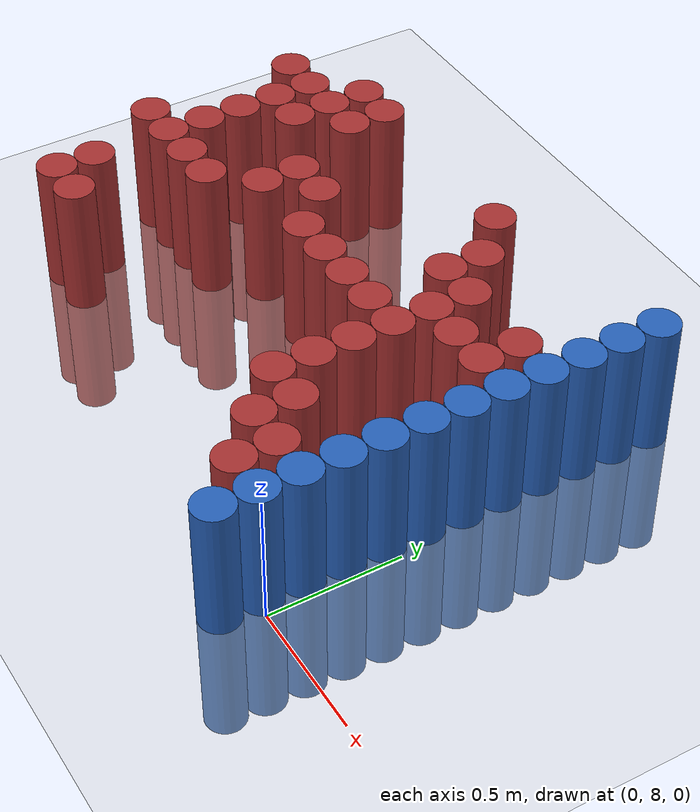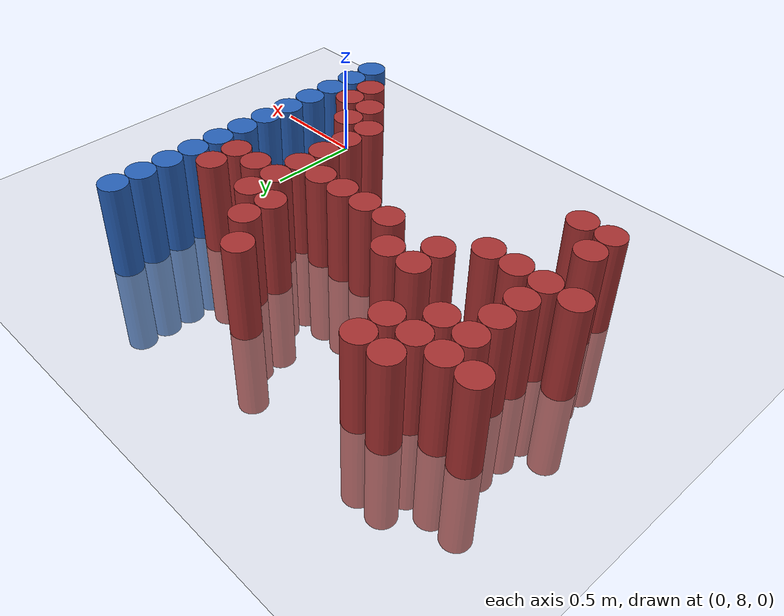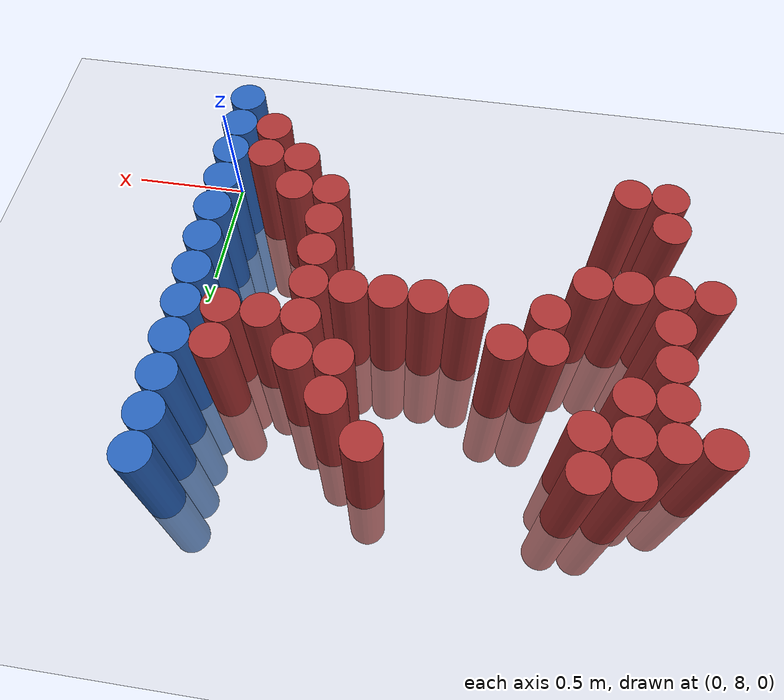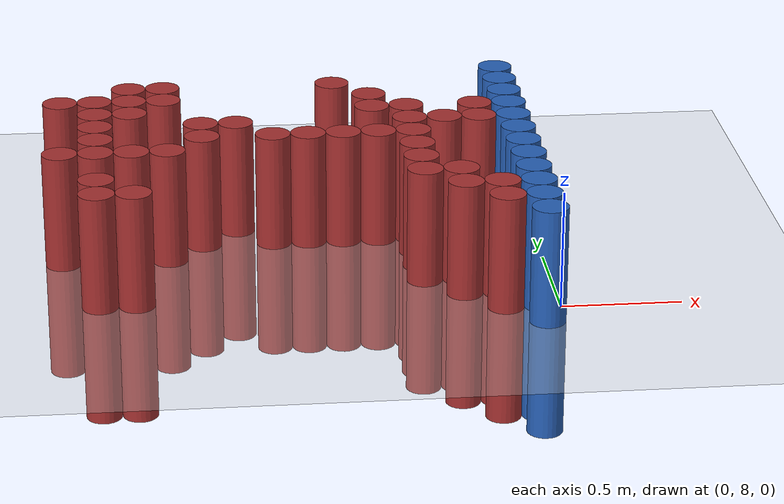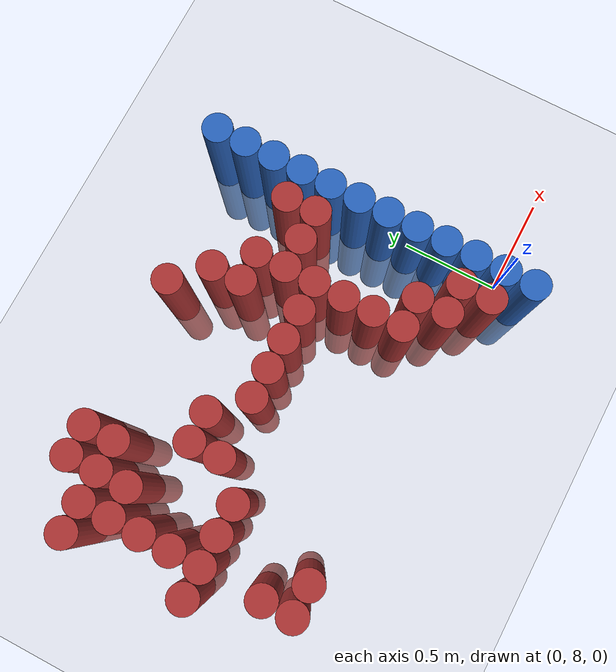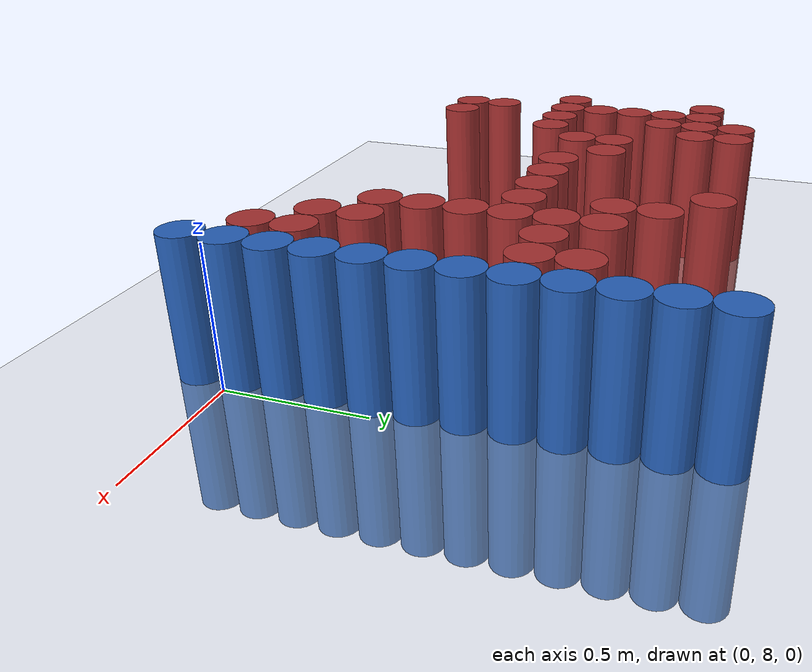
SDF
<sdf version="1.6">
 <world name="default">
  <model name="ground_plane">
   <static>1</static>
   <link name="link">
    <collision name="collision">
     <geometry><plane><normal>0 0 1</normal><size>100 100</size></plane></geometry>
     <surface><friction><ode><mu>100</mu><mu2>50</mu2></ode></friction></surface>
    </collision>
    <visual name="visual">
     <cast_shadows>0</cast_shadows>
     <geometry><plane><normal>0 0 1</normal><size>100 100</size></plane></geometry>
     <material>
      <script><uri>file://media/materials/scripts/gazebo.material</uri><name>Gazebo/Grey</name></script>
     </material>
    </visual>
   </link>
  </model>
  <model name="unit_cylinder_226">
   <static>1</static>
   <pose>-2.025000 8.625000 0.000000 0.000000 0.000000 0.000000</pose>
   <link name="link">
    <inertial>
     <mass>1</mass>
     <inertia><ixx>0.145833</ixx><ixy>0</ixy><ixz>0</ixz><iyy>0.145833</iyy><iyz>0</iyz><izz>0.125</izz></inertia>
    </inertial>
    <collision name="collision">
     <geometry><cylinder><radius>0.075000</radius><length>1</length></cylinder></geometry>
    </collision>
    <visual name="visual">
     <geometry><cylinder><radius>0.075000</radius><length>1</length></cylinder></geometry>
     <material>
      <ambient>0.648000 0.192000 0.192000 1</ambient>
      <diffuse>0.648000 0.192000 0.192000 1</diffuse>
     </material>
     <material>
      <script><name>Gazebo/Grey</name><uri>file://media/materials/scripts/gazebo.material</uri></script>
     </material>
    </visual>
   </link>
  </model>
  <model name="unit_cylinder_227">
   <static>1</static>
   <pose>-2.025000 9.225000 0.000000 0.000000 0.000000 0.000000</pose>
   <link name="link">
    <inertial>
     <mass>1</mass>
     <inertia><ixx>0.145833</ixx><ixy>0</ixy><ixz>0</ixz><iyy>0.145833</iyy><iyz>0</iyz><izz>0.125</izz></inertia>
    </inertial>
    <collision name="collision">
     <geometry><cylinder><radius>0.075000</radius><length>1</length></cylinder></geometry>
    </collision>
    <visual name="visual">
     <geometry><cylinder><radius>0.075000</radius><length>1</length></cylinder></geometry>
     <material>
      <ambient>0.648000 0.192000 0.192000 1</ambient>
      <diffuse>0.648000 0.192000 0.192000 1</diffuse>
     </material>
     <material>
      <script><name>Gazebo/Grey</name><uri>file://media/materials/scripts/gazebo.material</uri></script>
     </material>
    </visual>
   </link>
  </model>
  <model name="unit_cylinder_234">
   <static>1</static>
   <pose>-1.875000 8.175000 0.000000 0.000000 0.000000 0.000000</pose>
   <link name="link">
    <inertial>
     <mass>1</mass>
     <inertia><ixx>0.145833</ixx><ixy>0</ixy><ixz>0</ixz><iyy>0.145833</iyy><iyz>0</iyz><izz>0.125</izz></inertia>
    </inertial>
    <collision name="collision">
     <geometry><cylinder><radius>0.075000</radius><length>1</length></cylinder></geometry>
    </collision>
    <visual name="visual">
     <geometry><cylinder><radius>0.075000</radius><length>1</length></cylinder></geometry>
     <material>
      <ambient>0.648000 0.192000 0.192000 1</ambient>
      <diffuse>0.648000 0.192000 0.192000 1</diffuse>
     </material>
     <material>
      <script><name>Gazebo/Grey</name><uri>file://media/materials/scripts/gazebo.material</uri></script>
     </material>
    </visual>
   </link>
  </model>
  <model name="unit_cylinder_235">
   <static>1</static>
   <pose>-1.875000 8.325000 0.000000 0.000000 0.000000 0.000000</pose>
   <link name="link">
    <inertial>
     <mass>1</mass>
     <inertia><ixx>0.145833</ixx><ixy>0</ixy><ixz>0</ixz><iyy>0.145833</iyy><iyz>0</iyz><izz>0.125</izz></inertia>
    </inertial>
    <collision name="collision">
     <geometry><cylinder><radius>0.075000</radius><length>1</length></cylinder></geometry>
    </collision>
    <visual name="visual">
     <geometry><cylinder><radius>0.075000</radius><length>1</length></cylinder></geometry>
     <material>
      <ambient>0.648000 0.192000 0.192000 1</ambient>
      <diffuse>0.648000 0.192000 0.192000 1</diffuse>
     </material>
     <material>
      <script><name>Gazebo/Grey</name><uri>file://media/materials/scripts/gazebo.material</uri></script>
     </material>
    </visual>
   </link>
  </model>
  <model name="unit_cylinder_236">
   <static>1</static>
   <pose>-1.875000 8.625000 0.000000 0.000000 0.000000 0.000000</pose>
   <link name="link">
    <inertial>
     <mass>1</mass>
     <inertia><ixx>0.145833</ixx><ixy>0</ixy><ixz>0</ixz><iyy>0.145833</iyy><iyz>0</iyz><izz>0.125</izz></inertia>
    </inertial>
    <collision name="collision">
     <geometry><cylinder><radius>0.075000</radius><length>1</length></cylinder></geometry>
    </collision>
    <visual name="visual">
     <geometry><cylinder><radius>0.075000</radius><length>1</length></cylinder></geometry>
     <material>
      <ambient>0.648000 0.192000 0.192000 1</ambient>
      <diffuse>0.648000 0.192000 0.192000 1</diffuse>
     </material>
     <material>
      <script><name>Gazebo/Grey</name><uri>file://media/materials/scripts/gazebo.material</uri></script>
     </material>
    </visual>
   </link>
  </model>
  <model name="unit_cylinder_237">
   <static>1</static>
   <pose>-1.875000 8.775000 0.000000 0.000000 0.000000 0.000000</pose>
   <link name="link">
    <inertial>
     <mass>1</mass>
     <inertia><ixx>0.145833</ixx><ixy>0</ixy><ixz>0</ixz><iyy>0.145833</iyy><iyz>0</iyz><izz>0.125</izz></inertia>
    </inertial>
    <collision name="collision">
     <geometry><cylinder><radius>0.075000</radius><length>1</length></cylinder></geometry>
    </collision>
    <visual name="visual">
     <geometry><cylinder><radius>0.075000</radius><length>1</length></cylinder></geometry>
     <material>
      <ambient>0.648000 0.192000 0.192000 1</ambient>
      <diffuse>0.648000 0.192000 0.192000 1</diffuse>
     </material>
     <material>
      <script><name>Gazebo/Grey</name><uri>file://media/materials/scripts/gazebo.material</uri></script>
     </material>
    </visual>
   </link>
  </model>
  <model name="unit_cylinder_238">
   <static>1</static>
   <pose>-1.875000 8.925000 0.000000 0.000000 0.000000 0.000000</pose>
   <link name="link">
    <inertial>
     <mass>1</mass>
     <inertia><ixx>0.145833</ixx><ixy>0</ixy><ixz>0</ixz><iyy>0.145833</iyy><iyz>0</iyz><izz>0.125</izz></inertia>
    </inertial>
    <collision name="collision">
     <geometry><cylinder><radius>0.075000</radius><length>1</length></cylinder></geometry>
    </collision>
    <visual name="visual">
     <geometry><cylinder><radius>0.075000</radius><length>1</length></cylinder></geometry>
     <material>
      <ambient>0.648000 0.192000 0.192000 1</ambient>
      <diffuse>0.648000 0.192000 0.192000 1</diffuse>
     </material>
     <material>
      <script><name>Gazebo/Grey</name><uri>file://media/materials/scripts/gazebo.material</uri></script>
     </material>
    </visual>
   </link>
  </model>
  <model name="unit_cylinder_239">
   <static>1</static>
   <pose>-1.875000 9.075000 0.000000 0.000000 0.000000 0.000000</pose>
   <link name="link">
    <inertial>
     <mass>1</mass>
     <inertia><ixx>0.145833</ixx><ixy>0</ixy><ixz>0</ixz><iyy>0.145833</iyy><iyz>0</iyz><izz>0.125</izz></inertia>
    </inertial>
    <collision name="collision">
     <geometry><cylinder><radius>0.075000</radius><length>1</length></cylinder></geometry>
    </collision>
    <visual name="visual">
     <geometry><cylinder><radius>0.075000</radius><length>1</length></cylinder></geometry>
     <material>
      <ambient>0.648000 0.192000 0.192000 1</ambient>
      <diffuse>0.648000 0.192000 0.192000 1</diffuse>
     </material>
     <material>
      <script><name>Gazebo/Grey</name><uri>file://media/materials/scripts/gazebo.material</uri></script>
     </material>
    </visual>
   </link>
  </model>
  <model name="unit_cylinder_240">
   <static>1</static>
   <pose>-1.875000 9.225000 0.000000 0.000000 0.000000 0.000000</pose>
   <link name="link">
    <inertial>
     <mass>1</mass>
     <inertia><ixx>0.145833</ixx><ixy>0</ixy><ixz>0</ixz><iyy>0.145833</iyy><iyz>0</iyz><izz>0.125</izz></inertia>
    </inertial>
    <collision name="collision">
     <geometry><cylinder><radius>0.075000</radius><length>1</length></cylinder></geometry>
    </collision>
    <visual name="visual">
     <geometry><cylinder><radius>0.075000</radius><length>1</length></cylinder></geometry>
     <material>
      <ambient>0.648000 0.192000 0.192000 1</ambient>
      <diffuse>0.648000 0.192000 0.192000 1</diffuse>
     </material>
     <material>
      <script><name>Gazebo/Grey</name><uri>file://media/materials/scripts/gazebo.material</uri></script>
     </material>
    </visual>
   </link>
  </model>
  <model name="unit_cylinder_251">
   <static>1</static>
   <pose>-1.725000 8.175000 0.000000 0.000000 0.000000 0.000000</pose>
   <link name="link">
    <inertial>
     <mass>1</mass>
     <inertia><ixx>0.145833</ixx><ixy>0</ixy><ixz>0</ixz><iyy>0.145833</iyy><iyz>0</iyz><izz>0.125</izz></inertia>
    </inertial>
    <collision name="collision">
     <geometry><cylinder><radius>0.075000</radius><length>1</length></cylinder></geometry>
    </collision>
    <visual name="visual">
     <geometry><cylinder><radius>0.075000</radius><length>1</length></cylinder></geometry>
     <material>
      <ambient>0.648000 0.192000 0.192000 1</ambient>
      <diffuse>0.648000 0.192000 0.192000 1</diffuse>
     </material>
     <material>
      <script><name>Gazebo/Grey</name><uri>file://media/materials/scripts/gazebo.material</uri></script>
     </material>
    </visual>
   </link>
  </model>
  <model name="unit_cylinder_252">
   <static>1</static>
   <pose>-1.725000 8.625000 0.000000 0.000000 0.000000 0.000000</pose>
   <link name="link">
    <inertial>
     <mass>1</mass>
     <inertia><ixx>0.145833</ixx><ixy>0</ixy><ixz>0</ixz><iyy>0.145833</iyy><iyz>0</iyz><izz>0.125</izz></inertia>
    </inertial>
    <collision name="collision">
     <geometry><cylinder><radius>0.075000</radius><length>1</length></cylinder></geometry>
    </collision>
    <visual name="visual">
     <geometry><cylinder><radius>0.075000</radius><length>1</length></cylinder></geometry>
     <material>
      <ambient>0.648000 0.192000 0.192000 1</ambient>
      <diffuse>0.648000 0.192000 0.192000 1</diffuse>
     </material>
     <material>
      <script><name>Gazebo/Grey</name><uri>file://media/materials/scripts/gazebo.material</uri></script>
     </material>
    </visual>
   </link>
  </model>
  <model name="unit_cylinder_253">
   <static>1</static>
   <pose>-1.725000 9.075000 0.000000 0.000000 0.000000 0.000000</pose>
   <link name="link">
    <inertial>
     <mass>1</mass>
     <inertia><ixx>0.145833</ixx><ixy>0</ixy><ixz>0</ixz><iyy>0.145833</iyy><iyz>0</iyz><izz>0.125</izz></inertia>
    </inertial>
    <collision name="collision">
     <geometry><cylinder><radius>0.075000</radius><length>1</length></cylinder></geometry>
    </collision>
    <visual name="visual">
     <geometry><cylinder><radius>0.075000</radius><length>1</length></cylinder></geometry>
     <material>
      <ambient>0.648000 0.192000 0.192000 1</ambient>
      <diffuse>0.648000 0.192000 0.192000 1</diffuse>
     </material>
     <material>
      <script><name>Gazebo/Grey</name><uri>file://media/materials/scripts/gazebo.material</uri></script>
     </material>
    </visual>
   </link>
  </model>
  <model name="unit_cylinder_254">
   <static>1</static>
   <pose>-1.725000 9.225000 0.000000 0.000000 0.000000 0.000000</pose>
   <link name="link">
    <inertial>
     <mass>1</mass>
     <inertia><ixx>0.145833</ixx><ixy>0</ixy><ixz>0</ixz><iyy>0.145833</iyy><iyz>0</iyz><izz>0.125</izz></inertia>
    </inertial>
    <collision name="collision">
     <geometry><cylinder><radius>0.075000</radius><length>1</length></cylinder></geometry>
    </collision>
    <visual name="visual">
     <geometry><cylinder><radius>0.075000</radius><length>1</length></cylinder></geometry>
     <material>
      <ambient>0.648000 0.192000 0.192000 1</ambient>
      <diffuse>0.648000 0.192000 0.192000 1</diffuse>
     </material>
     <material>
      <script><name>Gazebo/Grey</name><uri>file://media/materials/scripts/gazebo.material</uri></script>
     </material>
    </visual>
   </link>
  </model>
  <model name="unit_cylinder_255">
   <static>1</static>
   <pose>-1.725000 9.375000 0.000000 0.000000 0.000000 0.000000</pose>
   <link name="link">
    <inertial>
     <mass>1</mass>
     <inertia><ixx>0.145833</ixx><ixy>0</ixy><ixz>0</ixz><iyy>0.145833</iyy><iyz>0</iyz><izz>0.125</izz></inertia>
    </inertial>
    <collision name="collision">
     <geometry><cylinder><radius>0.075000</radius><length>1</length></cylinder></geometry>
    </collision>
    <visual name="visual">
     <geometry><cylinder><radius>0.075000</radius><length>1</length></cylinder></geometry>
     <material>
      <ambient>0.648000 0.192000 0.192000 1</ambient>
      <diffuse>0.648000 0.192000 0.192000 1</diffuse>
     </material>
     <material>
      <script><name>Gazebo/Grey</name><uri>file://media/materials/scripts/gazebo.material</uri></script>
     </material>
    </visual>
   </link>
  </model>
  <model name="unit_cylinder_264">
   <static>1</static>
   <pose>-1.575000 8.625000 0.000000 0.000000 0.000000 0.000000</pose>
   <link name="link">
    <inertial>
     <mass>1</mass>
     <inertia><ixx>0.145833</ixx><ixy>0</ixy><ixz>0</ixz><iyy>0.145833</iyy><iyz>0</iyz><izz>0.125</izz></inertia>
    </inertial>
    <collision name="collision">
     <geometry><cylinder><radius>0.075000</radius><length>1</length></cylinder></geometry>
    </collision>
    <visual name="visual">
     <geometry><cylinder><radius>0.075000</radius><length>1</length></cylinder></geometry>
     <material>
      <ambient>0.648000 0.192000 0.192000 1</ambient>
      <diffuse>0.648000 0.192000 0.192000 1</diffuse>
     </material>
     <material>
      <script><name>Gazebo/Grey</name><uri>file://media/materials/scripts/gazebo.material</uri></script>
     </material>
    </visual>
   </link>
  </model>
  <model name="unit_cylinder_265">
   <static>1</static>
   <pose>-1.575000 9.225000 0.000000 0.000000 0.000000 0.000000</pose>
   <link name="link">
    <inertial>
     <mass>1</mass>
     <inertia><ixx>0.145833</ixx><ixy>0</ixy><ixz>0</ixz><iyy>0.145833</iyy><iyz>0</iyz><izz>0.125</izz></inertia>
    </inertial>
    <collision name="collision">
     <geometry><cylinder><radius>0.075000</radius><length>1</length></cylinder></geometry>
    </collision>
    <visual name="visual">
     <geometry><cylinder><radius>0.075000</radius><length>1</length></cylinder></geometry>
     <material>
      <ambient>0.648000 0.192000 0.192000 1</ambient>
      <diffuse>0.648000 0.192000 0.192000 1</diffuse>
     </material>
     <material>
      <script><name>Gazebo/Grey</name><uri>file://media/materials/scripts/gazebo.material</uri></script>
     </material>
    </visual>
   </link>
  </model>
  <model name="unit_cylinder_266">
   <static>1</static>
   <pose>-1.575000 9.375000 0.000000 0.000000 0.000000 0.000000</pose>
   <link name="link">
    <inertial>
     <mass>1</mass>
     <inertia><ixx>0.145833</ixx><ixy>0</ixy><ixz>0</ixz><iyy>0.145833</iyy><iyz>0</iyz><izz>0.125</izz></inertia>
    </inertial>
    <collision name="collision">
     <geometry><cylinder><radius>0.075000</radius><length>1</length></cylinder></geometry>
    </collision>
    <visual name="visual">
     <geometry><cylinder><radius>0.075000</radius><length>1</length></cylinder></geometry>
     <material>
      <ambient>0.648000 0.192000 0.192000 1</ambient>
      <diffuse>0.648000 0.192000 0.192000 1</diffuse>
     </material>
     <material>
      <script><name>Gazebo/Grey</name><uri>file://media/materials/scripts/gazebo.material</uri></script>
     </material>
    </visual>
   </link>
  </model>
  <model name="unit_cylinder_274">
   <static>1</static>
   <pose>-1.425000 8.775000 0.000000 0.000000 0.000000 0.000000</pose>
   <link name="link">
    <inertial>
     <mass>1</mass>
     <inertia><ixx>0.145833</ixx><ixy>0</ixy><ixz>0</ixz><iyy>0.145833</iyy><iyz>0</iyz><izz>0.125</izz></inertia>
    </inertial>
    <collision name="collision">
     <geometry><cylinder><radius>0.075000</radius><length>1</length></cylinder></geometry>
    </collision>
    <visual name="visual">
     <geometry><cylinder><radius>0.075000</radius><length>1</length></cylinder></geometry>
     <material>
      <ambient>0.648000 0.192000 0.192000 1</ambient>
      <diffuse>0.648000 0.192000 0.192000 1</diffuse>
     </material>
     <material>
      <script><name>Gazebo/Grey</name><uri>file://media/materials/scripts/gazebo.material</uri></script>
     </material>
    </visual>
   </link>
  </model>
  <model name="unit_cylinder_275">
   <static>1</static>
   <pose>-1.425000 8.925000 0.000000 0.000000 0.000000 0.000000</pose>
   <link name="link">
    <inertial>
     <mass>1</mass>
     <inertia><ixx>0.145833</ixx><ixy>0</ixy><ixz>0</ixz><iyy>0.145833</iyy><iyz>0</iyz><izz>0.125</izz></inertia>
    </inertial>
    <collision name="collision">
     <geometry><cylinder><radius>0.075000</radius><length>1</length></cylinder></geometry>
    </collision>
    <visual name="visual">
     <geometry><cylinder><radius>0.075000</radius><length>1</length></cylinder></geometry>
     <material>
      <ambient>0.648000 0.192000 0.192000 1</ambient>
      <diffuse>0.648000 0.192000 0.192000 1</diffuse>
     </material>
     <material>
      <script><name>Gazebo/Grey</name><uri>file://media/materials/scripts/gazebo.material</uri></script>
     </material>
    </visual>
   </link>
  </model>
  <model name="unit_cylinder_278">
   <static>1</static>
   <pose>-1.275000 8.925000 0.000000 0.000000 0.000000 0.000000</pose>
   <link name="link">
    <inertial>
     <mass>1</mass>
     <inertia><ixx>0.145833</ixx><ixy>0</ixy><ixz>0</ixz><iyy>0.145833</iyy><iyz>0</iyz><izz>0.125</izz></inertia>
    </inertial>
    <collision name="collision">
     <geometry><cylinder><radius>0.075000</radius><length>1</length></cylinder></geometry>
    </collision>
    <visual name="visual">
     <geometry><cylinder><radius>0.075000</radius><length>1</length></cylinder></geometry>
     <material>
      <ambient>0.648000 0.192000 0.192000 1</ambient>
      <diffuse>0.648000 0.192000 0.192000 1</diffuse>
     </material>
     <material>
      <script><name>Gazebo/Grey</name><uri>file://media/materials/scripts/gazebo.material</uri></script>
     </material>
    </visual>
   </link>
  </model>
  <model name="unit_cylinder_279">
   <static>1</static>
   <pose>-1.125000 8.775000 0.000000 0.000000 0.000000 0.000000</pose>
   <link name="link">
    <inertial>
     <mass>1</mass>
     <inertia><ixx>0.145833</ixx><ixy>0</ixy><ixz>0</ixz><iyy>0.145833</iyy><iyz>0</iyz><izz>0.125</izz></inertia>
    </inertial>
    <collision name="collision">
     <geometry><cylinder><radius>0.075000</radius><length>1</length></cylinder></geometry>
    </collision>
    <visual name="visual">
     <geometry><cylinder><radius>0.075000</radius><length>1</length></cylinder></geometry>
     <material>
      <ambient>0.648000 0.192000 0.192000 1</ambient>
      <diffuse>0.648000 0.192000 0.192000 1</diffuse>
     </material>
     <material>
      <script><name>Gazebo/Grey</name><uri>file://media/materials/scripts/gazebo.material</uri></script>
     </material>
    </visual>
   </link>
  </model>
  <model name="unit_cylinder_280">
   <static>1</static>
   <pose>-0.975000 8.775000 0.000000 0.000000 0.000000 0.000000</pose>
   <link name="link">
    <inertial>
     <mass>1</mass>
     <inertia><ixx>0.145833</ixx><ixy>0</ixy><ixz>0</ixz><iyy>0.145833</iyy><iyz>0</iyz><izz>0.125</izz></inertia>
    </inertial>
    <collision name="collision">
     <geometry><cylinder><radius>0.075000</radius><length>1</length></cylinder></geometry>
    </collision>
    <visual name="visual">
     <geometry><cylinder><radius>0.075000</radius><length>1</length></cylinder></geometry>
     <material>
      <ambient>0.648000 0.192000 0.192000 1</ambient>
      <diffuse>0.648000 0.192000 0.192000 1</diffuse>
     </material>
     <material>
      <script><name>Gazebo/Grey</name><uri>file://media/materials/scripts/gazebo.material</uri></script>
     </material>
    </visual>
   </link>
  </model>
  <model name="unit_cylinder_282">
   <static>1</static>
   <pose>-0.825000 8.775000 0.000000 0.000000 0.000000 0.000000</pose>
   <link name="link">
    <inertial>
     <mass>1</mass>
     <inertia><ixx>0.145833</ixx><ixy>0</ixy><ixz>0</ixz><iyy>0.145833</iyy><iyz>0</iyz><izz>0.125</izz></inertia>
    </inertial>
    <collision name="collision">
     <geometry><cylinder><radius>0.075000</radius><length>1</length></cylinder></geometry>
    </collision>
    <visual name="visual">
     <geometry><cylinder><radius>0.075000</radius><length>1</length></cylinder></geometry>
     <material>
      <ambient>0.648000 0.192000 0.192000 1</ambient>
      <diffuse>0.648000 0.192000 0.192000 1</diffuse>
     </material>
     <material>
      <script><name>Gazebo/Grey</name><uri>file://media/materials/scripts/gazebo.material</uri></script>
     </material>
    </visual>
   </link>
  </model>
  <model name="unit_cylinder_283">
   <static>1</static>
   <pose>-0.825000 9.375000 0.000000 0.000000 0.000000 0.000000</pose>
   <link name="link">
    <inertial>
     <mass>1</mass>
     <inertia><ixx>0.145833</ixx><ixy>0</ixy><ixz>0</ixz><iyy>0.145833</iyy><iyz>0</iyz><izz>0.125</izz></inertia>
    </inertial>
    <collision name="collision">
     <geometry><cylinder><radius>0.075000</radius><length>1</length></cylinder></geometry>
    </collision>
    <visual name="visual">
     <geometry><cylinder><radius>0.075000</radius><length>1</length></cylinder></geometry>
     <material>
      <ambient>0.648000 0.192000 0.192000 1</ambient>
      <diffuse>0.648000 0.192000 0.192000 1</diffuse>
     </material>
     <material>
      <script><name>Gazebo/Grey</name><uri>file://media/materials/scripts/gazebo.material</uri></script>
     </material>
    </visual>
   </link>
  </model>
  <model name="unit_cylinder_290">
   <static>1</static>
   <pose>-0.675000 8.775000 0.000000 0.000000 0.000000 0.000000</pose>
   <link name="link">
    <inertial>
     <mass>1</mass>
     <inertia><ixx>0.145833</ixx><ixy>0</ixy><ixz>0</ixz><iyy>0.145833</iyy><iyz>0</iyz><izz>0.125</izz></inertia>
    </inertial>
    <collision name="collision">
     <geometry><cylinder><radius>0.075000</radius><length>1</length></cylinder></geometry>
    </collision>
    <visual name="visual">
     <geometry><cylinder><radius>0.075000</radius><length>1</length></cylinder></geometry>
     <material>
      <ambient>0.648000 0.192000 0.192000 1</ambient>
      <diffuse>0.648000 0.192000 0.192000 1</diffuse>
     </material>
     <material>
      <script><name>Gazebo/Grey</name><uri>file://media/materials/scripts/gazebo.material</uri></script>
     </material>
    </visual>
   </link>
  </model>
  <model name="unit_cylinder_291">
   <static>1</static>
   <pose>-0.675000 9.075000 0.000000 0.000000 0.000000 0.000000</pose>
   <link name="link">
    <inertial>
     <mass>1</mass>
     <inertia><ixx>0.145833</ixx><ixy>0</ixy><ixz>0</ixz><iyy>0.145833</iyy><iyz>0</iyz><izz>0.125</izz></inertia>
    </inertial>
    <collision name="collision">
     <geometry><cylinder><radius>0.075000</radius><length>1</length></cylinder></geometry>
    </collision>
    <visual name="visual">
     <geometry><cylinder><radius>0.075000</radius><length>1</length></cylinder></geometry>
     <material>
      <ambient>0.648000 0.192000 0.192000 1</ambient>
      <diffuse>0.648000 0.192000 0.192000 1</diffuse>
     </material>
     <material>
      <script><name>Gazebo/Grey</name><uri>file://media/materials/scripts/gazebo.material</uri></script>
     </material>
    </visual>
   </link>
  </model>
  <model name="unit_cylinder_292">
   <static>1</static>
   <pose>-0.675000 9.225000 0.000000 0.000000 0.000000 0.000000</pose>
   <link name="link">
    <inertial>
     <mass>1</mass>
     <inertia><ixx>0.145833</ixx><ixy>0</ixy><ixz>0</ixz><iyy>0.145833</iyy><iyz>0</iyz><izz>0.125</izz></inertia>
    </inertial>
    <collision name="collision">
     <geometry><cylinder><radius>0.075000</radius><length>1</length></cylinder></geometry>
    </collision>
    <visual name="visual">
     <geometry><cylinder><radius>0.075000</radius><length>1</length></cylinder></geometry>
     <material>
      <ambient>0.648000 0.192000 0.192000 1</ambient>
      <diffuse>0.648000 0.192000 0.192000 1</diffuse>
     </material>
     <material>
      <script><name>Gazebo/Grey</name><uri>file://media/materials/scripts/gazebo.material</uri></script>
     </material>
    </visual>
   </link>
  </model>
  <model name="unit_cylinder_300">
   <static>1</static>
   <pose>-0.525000 8.325000 0.000000 0.000000 0.000000 0.000000</pose>
   <link name="link">
    <inertial>
     <mass>1</mass>
     <inertia><ixx>0.145833</ixx><ixy>0</ixy><ixz>0</ixz><iyy>0.145833</iyy><iyz>0</iyz><izz>0.125</izz></inertia>
    </inertial>
    <collision name="collision">
     <geometry><cylinder><radius>0.075000</radius><length>1</length></cylinder></geometry>
    </collision>
    <visual name="visual">
     <geometry><cylinder><radius>0.075000</radius><length>1</length></cylinder></geometry>
     <material>
      <ambient>0.648000 0.192000 0.192000 1</ambient>
      <diffuse>0.648000 0.192000 0.192000 1</diffuse>
     </material>
     <material>
      <script><name>Gazebo/Grey</name><uri>file://media/materials/scripts/gazebo.material</uri></script>
     </material>
    </visual>
   </link>
  </model>
  <model name="unit_cylinder_301">
   <static>1</static>
   <pose>-0.525000 8.475000 0.000000 0.000000 0.000000 0.000000</pose>
   <link name="link">
    <inertial>
     <mass>1</mass>
     <inertia><ixx>0.145833</ixx><ixy>0</ixy><ixz>0</ixz><iyy>0.145833</iyy><iyz>0</iyz><izz>0.125</izz></inertia>
    </inertial>
    <collision name="collision">
     <geometry><cylinder><radius>0.075000</radius><length>1</length></cylinder></geometry>
    </collision>
    <visual name="visual">
     <geometry><cylinder><radius>0.075000</radius><length>1</length></cylinder></geometry>
     <material>
      <ambient>0.648000 0.192000 0.192000 1</ambient>
      <diffuse>0.648000 0.192000 0.192000 1</diffuse>
     </material>
     <material>
      <script><name>Gazebo/Grey</name><uri>file://media/materials/scripts/gazebo.material</uri></script>
     </material>
    </visual>
   </link>
  </model>
  <model name="unit_cylinder_302">
   <static>1</static>
   <pose>-0.525000 8.625000 0.000000 0.000000 0.000000 0.000000</pose>
   <link name="link">
    <inertial>
     <mass>1</mass>
     <inertia><ixx>0.145833</ixx><ixy>0</ixy><ixz>0</ixz><iyy>0.145833</iyy><iyz>0</iyz><izz>0.125</izz></inertia>
    </inertial>
    <collision name="collision">
     <geometry><cylinder><radius>0.075000</radius><length>1</length></cylinder></geometry>
    </collision>
    <visual name="visual">
     <geometry><cylinder><radius>0.075000</radius><length>1</length></cylinder></geometry>
     <material>
      <ambient>0.648000 0.192000 0.192000 1</ambient>
      <diffuse>0.648000 0.192000 0.192000 1</diffuse>
     </material>
     <material>
      <script><name>Gazebo/Grey</name><uri>file://media/materials/scripts/gazebo.material</uri></script>
     </material>
    </visual>
   </link>
  </model>
  <model name="unit_cylinder_303">
   <static>1</static>
   <pose>-0.525000 8.775000 0.000000 0.000000 0.000000 0.000000</pose>
   <link name="link">
    <inertial>
     <mass>1</mass>
     <inertia><ixx>0.145833</ixx><ixy>0</ixy><ixz>0</ixz><iyy>0.145833</iyy><iyz>0</iyz><izz>0.125</izz></inertia>
    </inertial>
    <collision name="collision">
     <geometry><cylinder><radius>0.075000</radius><length>1</length></cylinder></geometry>
    </collision>
    <visual name="visual">
     <geometry><cylinder><radius>0.075000</radius><length>1</length></cylinder></geometry>
     <material>
      <ambient>0.648000 0.192000 0.192000 1</ambient>
      <diffuse>0.648000 0.192000 0.192000 1</diffuse>
     </material>
     <material>
      <script><name>Gazebo/Grey</name><uri>file://media/materials/scripts/gazebo.material</uri></script>
     </material>
    </visual>
   </link>
  </model>
  <model name="unit_cylinder_304">
   <static>1</static>
   <pose>-0.525000 8.925000 0.000000 0.000000 0.000000 0.000000</pose>
   <link name="link">
    <inertial>
     <mass>1</mass>
     <inertia><ixx>0.145833</ixx><ixy>0</ixy><ixz>0</ixz><iyy>0.145833</iyy><iyz>0</iyz><izz>0.125</izz></inertia>
    </inertial>
    <collision name="collision">
     <geometry><cylinder><radius>0.075000</radius><length>1</length></cylinder></geometry>
    </collision>
    <visual name="visual">
     <geometry><cylinder><radius>0.075000</radius><length>1</length></cylinder></geometry>
     <material>
      <ambient>0.648000 0.192000 0.192000 1</ambient>
      <diffuse>0.648000 0.192000 0.192000 1</diffuse>
     </material>
     <material>
      <script><name>Gazebo/Grey</name><uri>file://media/materials/scripts/gazebo.material</uri></script>
     </material>
    </visual>
   </link>
  </model>
  <model name="unit_cylinder_305">
   <static>1</static>
   <pose>-0.525000 9.075000 0.000000 0.000000 0.000000 0.000000</pose>
   <link name="link">
    <inertial>
     <mass>1</mass>
     <inertia><ixx>0.145833</ixx><ixy>0</ixy><ixz>0</ixz><iyy>0.145833</iyy><iyz>0</iyz><izz>0.125</izz></inertia>
    </inertial>
    <collision name="collision">
     <geometry><cylinder><radius>0.075000</radius><length>1</length></cylinder></geometry>
    </collision>
    <visual name="visual">
     <geometry><cylinder><radius>0.075000</radius><length>1</length></cylinder></geometry>
     <material>
      <ambient>0.648000 0.192000 0.192000 1</ambient>
      <diffuse>0.648000 0.192000 0.192000 1</diffuse>
     </material>
     <material>
      <script><name>Gazebo/Grey</name><uri>file://media/materials/scripts/gazebo.material</uri></script>
     </material>
    </visual>
   </link>
  </model>
  <model name="unit_cylinder_312">
   <static>1</static>
   <pose>-0.375000 8.175000 0.000000 0.000000 0.000000 0.000000</pose>
   <link name="link">
    <inertial>
     <mass>1</mass>
     <inertia><ixx>0.145833</ixx><ixy>0</ixy><ixz>0</ixz><iyy>0.145833</iyy><iyz>0</iyz><izz>0.125</izz></inertia>
    </inertial>
    <collision name="collision">
     <geometry><cylinder><radius>0.075000</radius><length>1</length></cylinder></geometry>
    </collision>
    <visual name="visual">
     <geometry><cylinder><radius>0.075000</radius><length>1</length></cylinder></geometry>
     <material>
      <ambient>0.648000 0.192000 0.192000 1</ambient>
      <diffuse>0.648000 0.192000 0.192000 1</diffuse>
     </material>
     <material>
      <script><name>Gazebo/Grey</name><uri>file://media/materials/scripts/gazebo.material</uri></script>
     </material>
    </visual>
   </link>
  </model>
  <model name="unit_cylinder_313">
   <static>1</static>
   <pose>-0.375000 8.325000 0.000000 0.000000 0.000000 0.000000</pose>
   <link name="link">
    <inertial>
     <mass>1</mass>
     <inertia><ixx>0.145833</ixx><ixy>0</ixy><ixz>0</ixz><iyy>0.145833</iyy><iyz>0</iyz><izz>0.125</izz></inertia>
    </inertial>
    <collision name="collision">
     <geometry><cylinder><radius>0.075000</radius><length>1</length></cylinder></geometry>
    </collision>
    <visual name="visual">
     <geometry><cylinder><radius>0.075000</radius><length>1</length></cylinder></geometry>
     <material>
      <ambient>0.648000 0.192000 0.192000 1</ambient>
      <diffuse>0.648000 0.192000 0.192000 1</diffuse>
     </material>
     <material>
      <script><name>Gazebo/Grey</name><uri>file://media/materials/scripts/gazebo.material</uri></script>
     </material>
    </visual>
   </link>
  </model>
  <model name="unit_cylinder_314">
   <static>1</static>
   <pose>-0.375000 8.925000 0.000000 0.000000 0.000000 0.000000</pose>
   <link name="link">
    <inertial>
     <mass>1</mass>
     <inertia><ixx>0.145833</ixx><ixy>0</ixy><ixz>0</ixz><iyy>0.145833</iyy><iyz>0</iyz><izz>0.125</izz></inertia>
    </inertial>
    <collision name="collision">
     <geometry><cylinder><radius>0.075000</radius><length>1</length></cylinder></geometry>
    </collision>
    <visual name="visual">
     <geometry><cylinder><radius>0.075000</radius><length>1</length></cylinder></geometry>
     <material>
      <ambient>0.648000 0.192000 0.192000 1</ambient>
      <diffuse>0.648000 0.192000 0.192000 1</diffuse>
     </material>
     <material>
      <script><name>Gazebo/Grey</name><uri>file://media/materials/scripts/gazebo.material</uri></script>
     </material>
    </visual>
   </link>
  </model>
  <model name="unit_cylinder_325">
   <static>1</static>
   <pose>-0.225000 8.025000 0.000000 0.000000 0.000000 0.000000</pose>
   <link name="link">
    <inertial>
     <mass>1</mass>
     <inertia><ixx>0.145833</ixx><ixy>0</ixy><ixz>0</ixz><iyy>0.145833</iyy><iyz>0</iyz><izz>0.125</izz></inertia>
    </inertial>
    <collision name="collision">
     <geometry><cylinder><radius>0.075000</radius><length>1</length></cylinder></geometry>
    </collision>
    <visual name="visual">
     <geometry><cylinder><radius>0.075000</radius><length>1</length></cylinder></geometry>
     <material>
      <ambient>0.648000 0.192000 0.192000 1</ambient>
      <diffuse>0.648000 0.192000 0.192000 1</diffuse>
     </material>
     <material>
      <script><name>Gazebo/Grey</name><uri>file://media/materials/scripts/gazebo.material</uri></script>
     </material>
    </visual>
   </link>
  </model>
  <model name="unit_cylinder_326">
   <static>1</static>
   <pose>-0.225000 8.175000 0.000000 0.000000 0.000000 0.000000</pose>
   <link name="link">
    <inertial>
     <mass>1</mass>
     <inertia><ixx>0.145833</ixx><ixy>0</ixy><ixz>0</ixz><iyy>0.145833</iyy><iyz>0</iyz><izz>0.125</izz></inertia>
    </inertial>
    <collision name="collision">
     <geometry><cylinder><radius>0.075000</radius><length>1</length></cylinder></geometry>
    </collision>
    <visual name="visual">
     <geometry><cylinder><radius>0.075000</radius><length>1</length></cylinder></geometry>
     <material>
      <ambient>0.648000 0.192000 0.192000 1</ambient>
      <diffuse>0.648000 0.192000 0.192000 1</diffuse>
     </material>
     <material>
      <script><name>Gazebo/Grey</name><uri>file://media/materials/scripts/gazebo.material</uri></script>
     </material>
    </visual>
   </link>
  </model>
  <model name="unit_cylinder_327">
   <static>1</static>
   <pose>-0.225000 8.925000 0.000000 0.000000 0.000000 0.000000</pose>
   <link name="link">
    <inertial>
     <mass>1</mass>
     <inertia><ixx>0.145833</ixx><ixy>0</ixy><ixz>0</ixz><iyy>0.145833</iyy><iyz>0</iyz><izz>0.125</izz></inertia>
    </inertial>
    <collision name="collision">
     <geometry><cylinder><radius>0.075000</radius><length>1</length></cylinder></geometry>
    </collision>
    <visual name="visual">
     <geometry><cylinder><radius>0.075000</radius><length>1</length></cylinder></geometry>
     <material>
      <ambient>0.648000 0.192000 0.192000 1</ambient>
      <diffuse>0.648000 0.192000 0.192000 1</diffuse>
     </material>
     <material>
      <script><name>Gazebo/Grey</name><uri>file://media/materials/scripts/gazebo.material</uri></script>
     </material>
    </visual>
   </link>
  </model>
  <model name="unit_cylinder_328">
   <static>1</static>
   <pose>-0.225000 9.075000 0.000000 0.000000 0.000000 0.000000</pose>
   <link name="link">
    <inertial>
     <mass>1</mass>
     <inertia><ixx>0.145833</ixx><ixy>0</ixy><ixz>0</ixz><iyy>0.145833</iyy><iyz>0</iyz><izz>0.125</izz></inertia>
    </inertial>
    <collision name="collision">
     <geometry><cylinder><radius>0.075000</radius><length>1</length></cylinder></geometry>
    </collision>
    <visual name="visual">
     <geometry><cylinder><radius>0.075000</radius><length>1</length></cylinder></geometry>
     <material>
      <ambient>0.648000 0.192000 0.192000 1</ambient>
      <diffuse>0.648000 0.192000 0.192000 1</diffuse>
     </material>
     <material>
      <script><name>Gazebo/Grey</name><uri>file://media/materials/scripts/gazebo.material</uri></script>
     </material>
    </visual>
   </link>
  </model>
  <model name="unit_cylinder_347">
   <static>1</static>
   <pose>-0.075000 7.875000 0.000000 0.000000 0.000000 0.000000</pose>
   <link name="link">
    <inertial>
     <mass>1</mass>
     <inertia><ixx>0.145833</ixx><ixy>0</ixy><ixz>0</ixz><iyy>0.145833</iyy><iyz>0</iyz><izz>0.125</izz></inertia>
    </inertial>
    <collision name="collision">
     <geometry><cylinder><radius>0.075000</radius><length>1</length></cylinder></geometry>
    </collision>
    <visual name="visual">
     <geometry><cylinder><radius>0.075000</radius><length>1</length></cylinder></geometry>
     <material>
      <ambient>0.152000 0.379000 0.720000 1</ambient>
      <diffuse>0.152000 0.379000 0.720000 1</diffuse>
     </material>
     <material>
      <script><name>Gazebo/Grey</name><uri>file://media/materials/scripts/gazebo.material</uri></script>
     </material>
    </visual>
   </link>
  </model>
  <model name="unit_cylinder_348">
   <static>1</static>
   <pose>-0.075000 8.025000 0.000000 0.000000 0.000000 0.000000</pose>
   <link name="link">
    <inertial>
     <mass>1</mass>
     <inertia><ixx>0.145833</ixx><ixy>0</ixy><ixz>0</ixz><iyy>0.145833</iyy><iyz>0</iyz><izz>0.125</izz></inertia>
    </inertial>
    <collision name="collision">
     <geometry><cylinder><radius>0.075000</radius><length>1</length></cylinder></geometry>
    </collision>
    <visual name="visual">
     <geometry><cylinder><radius>0.075000</radius><length>1</length></cylinder></geometry>
     <material>
      <ambient>0.152000 0.379000 0.720000 1</ambient>
      <diffuse>0.152000 0.379000 0.720000 1</diffuse>
     </material>
     <material>
      <script><name>Gazebo/Grey</name><uri>file://media/materials/scripts/gazebo.material</uri></script>
     </material>
    </visual>
   </link>
  </model>
  <model name="unit_cylinder_349">
   <static>1</static>
   <pose>-0.075000 8.175000 0.000000 0.000000 0.000000 0.000000</pose>
   <link name="link">
    <inertial>
     <mass>1</mass>
     <inertia><ixx>0.145833</ixx><ixy>0</ixy><ixz>0</ixz><iyy>0.145833</iyy><iyz>0</iyz><izz>0.125</izz></inertia>
    </inertial>
    <collision name="collision">
     <geometry><cylinder><radius>0.075000</radius><length>1</length></cylinder></geometry>
    </collision>
    <visual name="visual">
     <geometry><cylinder><radius>0.075000</radius><length>1</length></cylinder></geometry>
     <material>
      <ambient>0.152000 0.379000 0.720000 1</ambient>
      <diffuse>0.152000 0.379000 0.720000 1</diffuse>
     </material>
     <material>
      <script><name>Gazebo/Grey</name><uri>file://media/materials/scripts/gazebo.material</uri></script>
     </material>
    </visual>
   </link>
  </model>
  <model name="unit_cylinder_350">
   <static>1</static>
   <pose>-0.075000 8.325000 0.000000 0.000000 0.000000 0.000000</pose>
   <link name="link">
    <inertial>
     <mass>1</mass>
     <inertia><ixx>0.145833</ixx><ixy>0</ixy><ixz>0</ixz><iyy>0.145833</iyy><iyz>0</iyz><izz>0.125</izz></inertia>
    </inertial>
    <collision name="collision">
     <geometry><cylinder><radius>0.075000</radius><length>1</length></cylinder></geometry>
    </collision>
    <visual name="visual">
     <geometry><cylinder><radius>0.075000</radius><length>1</length></cylinder></geometry>
     <material>
      <ambient>0.152000 0.379000 0.720000 1</ambient>
      <diffuse>0.152000 0.379000 0.720000 1</diffuse>
     </material>
     <material>
      <script><name>Gazebo/Grey</name><uri>file://media/materials/scripts/gazebo.material</uri></script>
     </material>
    </visual>
   </link>
  </model>
  <model name="unit_cylinder_351">
   <static>1</static>
   <pose>-0.075000 8.475000 0.000000 0.000000 0.000000 0.000000</pose>
   <link name="link">
    <inertial>
     <mass>1</mass>
     <inertia><ixx>0.145833</ixx><ixy>0</ixy><ixz>0</ixz><iyy>0.145833</iyy><iyz>0</iyz><izz>0.125</izz></inertia>
    </inertial>
    <collision name="collision">
     <geometry><cylinder><radius>0.075000</radius><length>1</length></cylinder></geometry>
    </collision>
    <visual name="visual">
     <geometry><cylinder><radius>0.075000</radius><length>1</length></cylinder></geometry>
     <material>
      <ambient>0.152000 0.379000 0.720000 1</ambient>
      <diffuse>0.152000 0.379000 0.720000 1</diffuse>
     </material>
     <material>
      <script><name>Gazebo/Grey</name><uri>file://media/materials/scripts/gazebo.material</uri></script>
     </material>
    </visual>
   </link>
  </model>
  <model name="unit_cylinder_352">
   <static>1</static>
   <pose>-0.075000 8.625000 0.000000 0.000000 0.000000 0.000000</pose>
   <link name="link">
    <inertial>
     <mass>1</mass>
     <inertia><ixx>0.145833</ixx><ixy>0</ixy><ixz>0</ixz><iyy>0.145833</iyy><iyz>0</iyz><izz>0.125</izz></inertia>
    </inertial>
    <collision name="collision">
     <geometry><cylinder><radius>0.075000</radius><length>1</length></cylinder></geometry>
    </collision>
    <visual name="visual">
     <geometry><cylinder><radius>0.075000</radius><length>1</length></cylinder></geometry>
     <material>
      <ambient>0.152000 0.379000 0.720000 1</ambient>
      <diffuse>0.152000 0.379000 0.720000 1</diffuse>
     </material>
     <material>
      <script><name>Gazebo/Grey</name><uri>file://media/materials/scripts/gazebo.material</uri></script>
     </material>
    </visual>
   </link>
  </model>
  <model name="unit_cylinder_353">
   <static>1</static>
   <pose>-0.075000 8.775000 0.000000 0.000000 0.000000 0.000000</pose>
   <link name="link">
    <inertial>
     <mass>1</mass>
     <inertia><ixx>0.145833</ixx><ixy>0</ixy><ixz>0</ixz><iyy>0.145833</iyy><iyz>0</iyz><izz>0.125</izz></inertia>
    </inertial>
    <collision name="collision">
     <geometry><cylinder><radius>0.075000</radius><length>1</length></cylinder></geometry>
    </collision>
    <visual name="visual">
     <geometry><cylinder><radius>0.075000</radius><length>1</length></cylinder></geometry>
     <material>
      <ambient>0.152000 0.379000 0.720000 1</ambient>
      <diffuse>0.152000 0.379000 0.720000 1</diffuse>
     </material>
     <material>
      <script><name>Gazebo/Grey</name><uri>file://media/materials/scripts/gazebo.material</uri></script>
     </material>
    </visual>
   </link>
  </model>
  <model name="unit_cylinder_354">
   <static>1</static>
   <pose>-0.075000 8.925000 0.000000 0.000000 0.000000 0.000000</pose>
   <link name="link">
    <inertial>
     <mass>1</mass>
     <inertia><ixx>0.145833</ixx><ixy>0</ixy><ixz>0</ixz><iyy>0.145833</iyy><iyz>0</iyz><izz>0.125</izz></inertia>
    </inertial>
    <collision name="collision">
     <geometry><cylinder><radius>0.075000</radius><length>1</length></cylinder></geometry>
    </collision>
    <visual name="visual">
     <geometry><cylinder><radius>0.075000</radius><length>1</length></cylinder></geometry>
     <material>
      <ambient>0.152000 0.379000 0.720000 1</ambient>
      <diffuse>0.152000 0.379000 0.720000 1</diffuse>
     </material>
     <material>
      <script><name>Gazebo/Grey</name><uri>file://media/materials/scripts/gazebo.material</uri></script>
     </material>
    </visual>
   </link>
  </model>
  <model name="unit_cylinder_355">
   <static>1</static>
   <pose>-0.075000 9.075000 0.000000 0.000000 0.000000 0.000000</pose>
   <link name="link">
    <inertial>
     <mass>1</mass>
     <inertia><ixx>0.145833</ixx><ixy>0</ixy><ixz>0</ixz><iyy>0.145833</iyy><iyz>0</iyz><izz>0.125</izz></inertia>
    </inertial>
    <collision name="collision">
     <geometry><cylinder><radius>0.075000</radius><length>1</length></cylinder></geometry>
    </collision>
    <visual name="visual">
     <geometry><cylinder><radius>0.075000</radius><length>1</length></cylinder></geometry>
     <material>
      <ambient>0.152000 0.379000 0.720000 1</ambient>
      <diffuse>0.152000 0.379000 0.720000 1</diffuse>
     </material>
     <material>
      <script><name>Gazebo/Grey</name><uri>file://media/materials/scripts/gazebo.material</uri></script>
     </material>
    </visual>
   </link>
  </model>
  <model name="unit_cylinder_356">
   <static>1</static>
   <pose>-0.075000 9.225000 0.000000 0.000000 0.000000 0.000000</pose>
   <link name="link">
    <inertial>
     <mass>1</mass>
     <inertia><ixx>0.145833</ixx><ixy>0</ixy><ixz>0</ixz><iyy>0.145833</iyy><iyz>0</iyz><izz>0.125</izz></inertia>
    </inertial>
    <collision name="collision">
     <geometry><cylinder><radius>0.075000</radius><length>1</length></cylinder></geometry>
    </collision>
    <visual name="visual">
     <geometry><cylinder><radius>0.075000</radius><length>1</length></cylinder></geometry>
     <material>
      <ambient>0.152000 0.379000 0.720000 1</ambient>
      <diffuse>0.152000 0.379000 0.720000 1</diffuse>
     </material>
     <material>
      <script><name>Gazebo/Grey</name><uri>file://media/materials/scripts/gazebo.material</uri></script>
     </material>
    </visual>
   </link>
  </model>
  <model name="unit_cylinder_357">
   <static>1</static>
   <pose>-0.075000 9.375000 0.000000 0.000000 0.000000 0.000000</pose>
   <link name="link">
    <inertial>
     <mass>1</mass>
     <inertia><ixx>0.145833</ixx><ixy>0</ixy><ixz>0</ixz><iyy>0.145833</iyy><iyz>0</iyz><izz>0.125</izz></inertia>
    </inertial>
    <collision name="collision">
     <geometry><cylinder><radius>0.075000</radius><length>1</length></cylinder></geometry>
    </collision>
    <visual name="visual">
     <geometry><cylinder><radius>0.075000</radius><length>1</length></cylinder></geometry>
     <material>
      <ambient>0.152000 0.379000 0.720000 1</ambient>
      <diffuse>0.152000 0.379000 0.720000 1</diffuse>
     </material>
     <material>
      <script><name>Gazebo/Grey</name><uri>file://media/materials/scripts/gazebo.material</uri></script>
     </material>
    </visual>
   </link>
  </model>
  <model name="unit_cylinder_358">
   <static>1</static>
   <pose>-0.075000 9.525000 0.000000 0.000000 0.000000 0.000000</pose>
   <link name="link">
    <inertial>
     <mass>1</mass>
     <inertia><ixx>0.145833</ixx><ixy>0</ixy><ixz>0</ixz><iyy>0.145833</iyy><iyz>0</iyz><izz>0.125</izz></inertia>
    </inertial>
    <collision name="collision">
     <geometry><cylinder><radius>0.075000</radius><length>1</length></cylinder></geometry>
    </collision>
    <visual name="visual">
     <geometry><cylinder><radius>0.075000</radius><length>1</length></cylinder></geometry>
     <material>
      <ambient>0.152000 0.379000 0.720000 1</ambient>
      <diffuse>0.152000 0.379000 0.720000 1</diffuse>
     </material>
     <material>
      <script><name>Gazebo/Grey</name><uri>file://media/materials/scripts/gazebo.material</uri></script>
     </material>
    </visual>
   </link>
  </model>
 </world>
</sdf>
